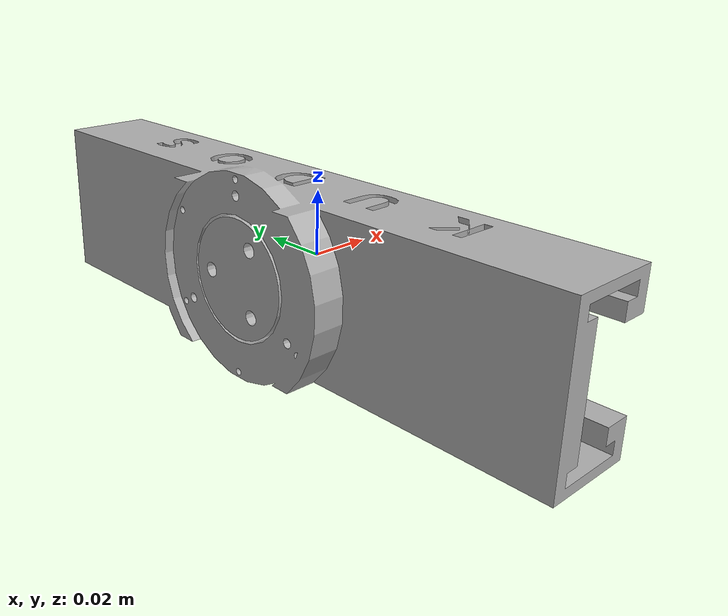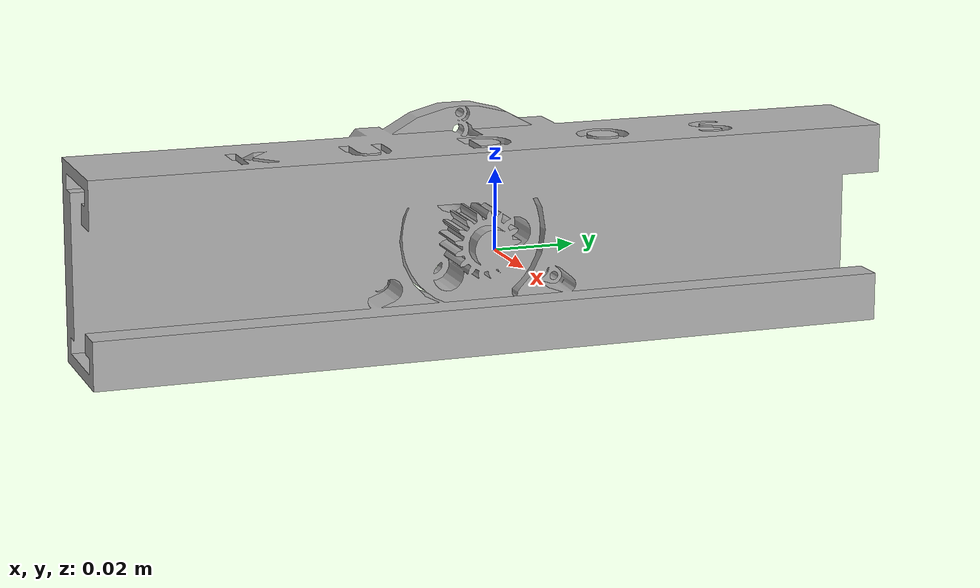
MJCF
<mujoco model="GRIPPER_BASE">
  <default>
    <default class="visual">
      <geom group="2" type="mesh" contype="0" conaffinity="0"/>
    </default>
    <default class="collision">
      <geom group="3" type="mesh"/>
    </default>
  </default>
  <asset>
    <material name="mtl_GRIPPER_BASE" specular="0.20000000000000004" shininess="1.0" rgba="0.69803922 0.69803922 0.69803922 1.0"/>
    <mesh file="GRIPPER_BASE.obj"/>
  </asset>
  <worldbody>
    <body name="GRIPPER_BASE">
      <geom material="mtl_GRIPPER_BASE" mesh="GRIPPER_BASE" class="visual"/>
      <geom mesh="GRIPPER_BASE" class="collision"/>
    </body>
  </worldbody>
</mujoco>
